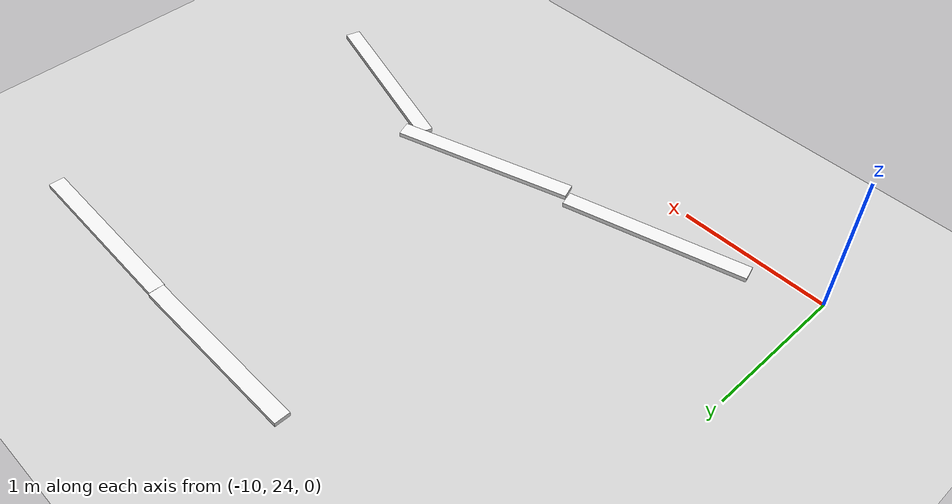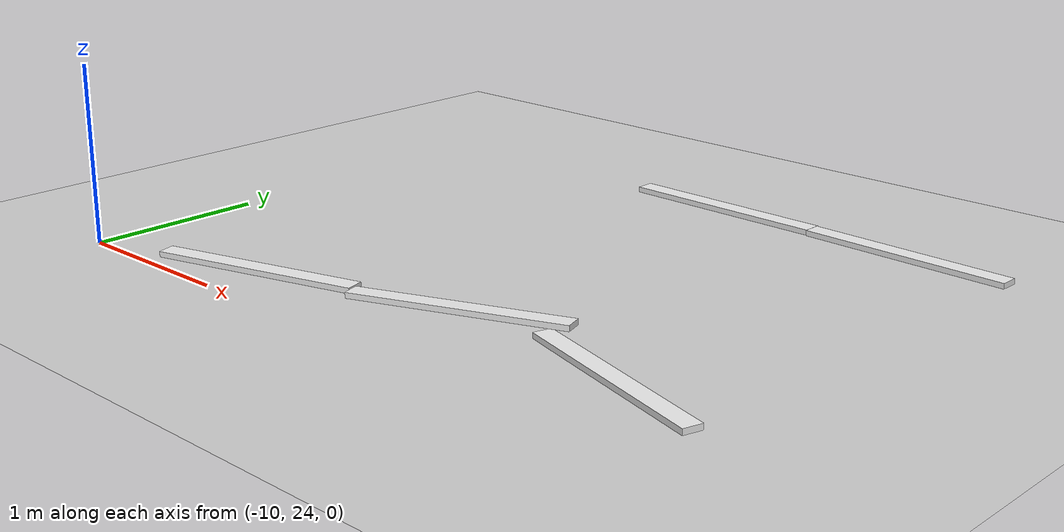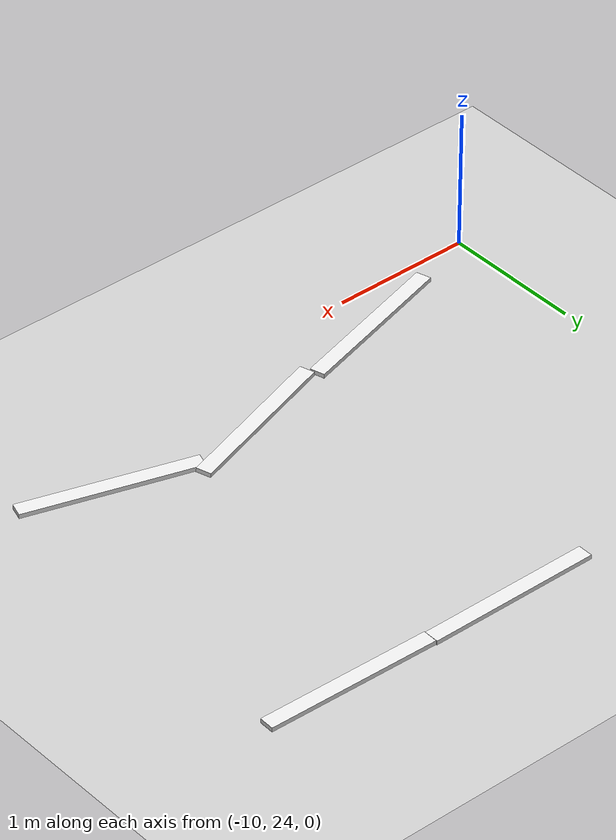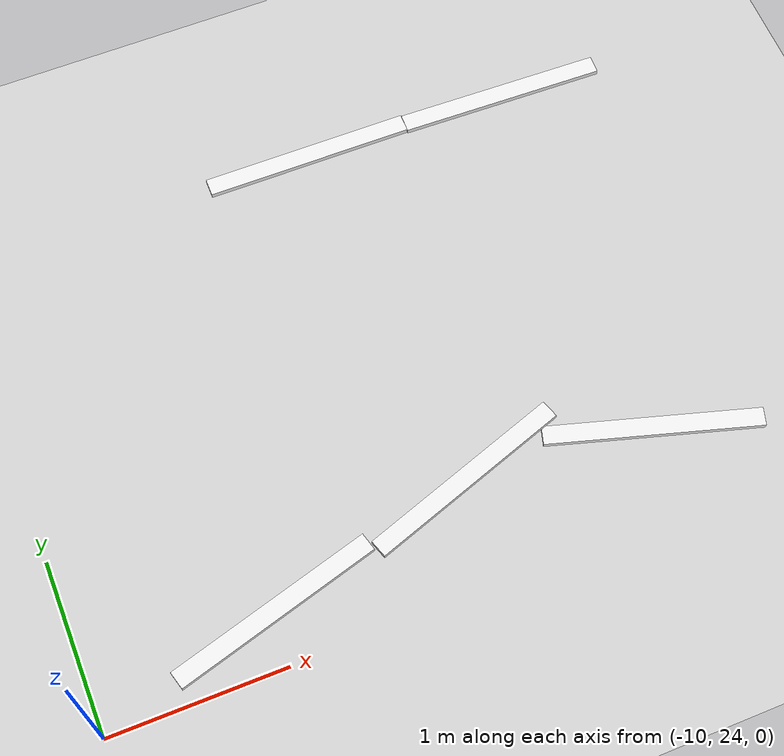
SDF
<sdf version="1.7">
 <world name="default">
  <model name="ground_plane">
   <static>1</static>
   <link name="link">
    <collision name="collision">
     <geometry><plane><normal>0 0 1</normal><size>100 100</size></plane></geometry>
     <surface><friction><ode><mu>100</mu><mu2>50</mu2></ode></friction></surface>
    </collision>
    <visual name="visual">
     <cast_shadows>0</cast_shadows>
     <geometry><plane><normal>0 0 1</normal><size>100 100</size></plane></geometry>
     <material>
      <script><uri>file://media/materials/scripts/gazebo.material</uri><name>Gazebo/Grey</name></script>
     </material>
    </visual>
   </link>
  </model>
  <model name="road_way_clone_clone_clone_0_clone_clone">
   <link name="link">
    <inertial>
     <mass>1</mass>
     <inertia>
      <ixx>0.166667</ixx>
      <ixy>0</ixy>
      <ixz>0</ixz>
      <iyy>0.166667</iyy>
      <iyz>0</iyz>
      <izz>0.166667</izz>
     </inertia>
    </inertial>
    <visual name="visual">
     <geometry><box><size>0.106644 1.22348 0.03129</size></box></geometry>
     <material>
      <script><name>Gazebo/White</name><uri>file://media/materials/scripts/gazebo.material</uri></script>
      <shader type="pixel"><normal_map>__default__</normal_map></shader>
      <ambient>1 1 1 1</ambient>
      <diffuse>1 1 1 1</diffuse>
      <specular>0 0 0 1</specular>
      <emissive>0 0 0 1</emissive>
     </material>
    </visual>
    <collision name="collision">
     <geometry><box><size>0.10644 1.22348 0.03129</size></box></geometry>
     <surface>
      <friction>
       <ode><mu>1</mu><mu2>1</mu2><fdir1>0 0 0</fdir1><slip1>0</slip1><slip2>0</slip2></ode>
       <torsional>
        <coefficient>1</coefficient>
        <patch_radius>0</patch_radius>
        <surface_radius>0</surface_radius>
        <use_patch_radius>1</use_patch_radius>
        <ode><slip>0</slip></ode>
       </torsional>
      </friction>
      <bounce><restitution_coefficient>0</restitution_coefficient><threshold>1e+06</threshold></bounce>
      <contact>
       <collide_without_contact>0</collide_without_contact>
       <collide_without_contact_bitmask>1</collide_without_contact_bitmask>
       <collide_bitmask>1</collide_bitmask>
       <ode>
        <soft_cfm>0</soft_cfm>
        <soft_erp>0.2</soft_erp>
        <kp>1e+13</kp>
        <kd>1</kd>
        <max_vel>0.01</max_vel>
        <min_depth>0</min_depth>
       </ode>
       <bullet>
        <split_impulse>1</split_impulse>
        <split_impulse_penetration_threshold>-0.01</split_impulse_penetration_threshold>
        <soft_cfm>0</soft_cfm>
        <soft_erp>0.2</soft_erp>
        <kp>1e+13</kp>
        <kd>1</kd>
       </bullet>
      </contact>
     </surface>
    </collision>
   </link>
   <static>0</static>
   <pose>-6.70437 24.506 0.013165 -0.005856 0.000514 1.28004</pose>
  </model>
  <model name="road_way_clone_clone_clone_0_clone_clone_clone">
   <link name="link">
    <inertial>
     <mass>1</mass>
     <inertia>
      <ixx>0.166667</ixx>
      <ixy>0</ixy>
      <ixz>0</ixz>
      <iyy>0.166667</iyy>
      <iyz>0</iyz>
      <izz>0.166667</izz>
     </inertia>
    </inertial>
    <visual name="visual">
     <geometry><box><size>0.106644 1.22348 0.03129</size></box></geometry>
     <material>
      <script><name>Gazebo/White</name><uri>file://media/materials/scripts/gazebo.material</uri></script>
      <shader type="pixel"><normal_map>__default__</normal_map></shader>
      <ambient>1 1 1 1</ambient>
      <diffuse>1 1 1 1</diffuse>
      <specular>0 0 0 1</specular>
      <emissive>0 0 0 1</emissive>
     </material>
    </visual>
    <collision name="collision">
     <geometry><box><size>0.10644 1.22348 0.03129</size></box></geometry>
     <surface>
      <friction>
       <ode><mu>1</mu><mu2>1</mu2><fdir1>0 0 0</fdir1><slip1>0</slip1><slip2>0</slip2></ode>
       <torsional>
        <coefficient>1</coefficient>
        <patch_radius>0</patch_radius>
        <surface_radius>0</surface_radius>
        <use_patch_radius>1</use_patch_radius>
        <ode><slip>0</slip></ode>
       </torsional>
      </friction>
      <bounce><restitution_coefficient>0</restitution_coefficient><threshold>1e+06</threshold></bounce>
      <contact>
       <collide_without_contact>0</collide_without_contact>
       <collide_without_contact_bitmask>1</collide_without_contact_bitmask>
       <collide_bitmask>1</collide_bitmask>
       <ode>
        <soft_cfm>0</soft_cfm>
        <soft_erp>0.2</soft_erp>
        <kp>1e+13</kp>
        <kd>1</kd>
        <max_vel>0.01</max_vel>
        <min_depth>0</min_depth>
       </ode>
       <bullet>
        <split_impulse>1</split_impulse>
        <split_impulse_penetration_threshold>-0.01</split_impulse_penetration_threshold>
        <soft_cfm>0</soft_cfm>
        <soft_erp>0.2</soft_erp>
        <kp>1e+13</kp>
        <kd>1</kd>
       </bullet>
      </contact>
     </surface>
    </collision>
   </link>
   <static>0</static>
   <pose>-7.77657 24.6047 0.029351 -0.02078 0.01886 1.89408</pose>
  </model>
  <model name="road_way_clone_clone_clone_0_clone_clone_clone_clone">
   <link name="link">
    <inertial>
     <mass>1</mass>
     <inertia>
      <ixx>0.166667</ixx>
      <ixy>0</ixy>
      <ixz>0</ixz>
      <iyy>0.166667</iyy>
      <iyz>0</iyz>
      <izz>0.166667</izz>
     </inertia>
    </inertial>
    <visual name="visual">
     <geometry><box><size>0.106644 1.22348 0.03129</size></box></geometry>
     <material>
      <script><name>Gazebo/White</name><uri>file://media/materials/scripts/gazebo.material</uri></script>
      <shader type="pixel"><normal_map>__default__</normal_map></shader>
      <ambient>1 1 1 1</ambient>
      <diffuse>1 1 1 1</diffuse>
      <specular>0 0 0 1</specular>
      <emissive>0 0 0 1</emissive>
     </material>
    </visual>
    <collision name="collision">
     <geometry><box><size>0.10644 1.22348 0.03129</size></box></geometry>
     <surface>
      <friction>
       <ode><mu>1</mu><mu2>1</mu2><fdir1>0 0 0</fdir1><slip1>0</slip1><slip2>0</slip2></ode>
       <torsional>
        <coefficient>1</coefficient>
        <patch_radius>0</patch_radius>
        <surface_radius>0</surface_radius>
        <use_patch_radius>1</use_patch_radius>
        <ode><slip>0</slip></ode>
       </torsional>
      </friction>
      <bounce><restitution_coefficient>0</restitution_coefficient><threshold>1e+06</threshold></bounce>
      <contact>
       <collide_without_contact>0</collide_without_contact>
       <collide_without_contact_bitmask>1</collide_without_contact_bitmask>
       <collide_bitmask>1</collide_bitmask>
       <ode>
        <soft_cfm>0</soft_cfm>
        <soft_erp>0.2</soft_erp>
        <kp>1e+13</kp>
        <kd>1</kd>
        <max_vel>0.01</max_vel>
        <min_depth>0</min_depth>
       </ode>
       <bullet>
        <split_impulse>1</split_impulse>
        <split_impulse_penetration_threshold>-0.01</split_impulse_penetration_threshold>
        <soft_cfm>0</soft_cfm>
        <soft_erp>0.2</soft_erp>
        <kp>1e+13</kp>
        <kd>1</kd>
       </bullet>
      </contact>
     </surface>
    </collision>
   </link>
   <static>0</static>
   <pose>-8.97761 24.3035 0.015638 1.1e-05 -0 1.84327</pose>
  </model>
  <model name="road_way_clone_clone_clone_clone_clone_clone_0_clone_0_clone">
   <link name="link">
    <inertial>
     <mass>1</mass>
     <inertia>
      <ixx>0.166667</ixx>
      <ixy>0</ixy>
      <ixz>0</ixz>
      <iyy>0.166667</iyy>
      <iyz>0</iyz>
      <izz>0.166667</izz>
     </inertia>
    </inertial>
    <visual name="visual">
     <geometry><box><size>0.106644 1.22348 0.03129</size></box></geometry>
     <material>
      <script><name>Gazebo/White</name><uri>file://media/materials/scripts/gazebo.material</uri></script>
      <shader type="pixel"><normal_map>__default__</normal_map></shader>
      <ambient>1 1 1 1</ambient>
      <diffuse>1 1 1 1</diffuse>
      <specular>0 0 0 1</specular>
      <emissive>0 0 0 1</emissive>
     </material>
    </visual>
    <collision name="collision">
     <geometry><box><size>0.10644 1.22348 0.03129</size></box></geometry>
     <surface>
      <friction>
       <ode><mu>1</mu><mu2>1</mu2><fdir1>0 0 0</fdir1><slip1>0</slip1><slip2>0</slip2></ode>
       <torsional>
        <coefficient>1</coefficient>
        <patch_radius>0</patch_radius>
        <surface_radius>0</surface_radius>
        <use_patch_radius>1</use_patch_radius>
        <ode><slip>0</slip></ode>
       </torsional>
      </friction>
      <bounce><restitution_coefficient>0</restitution_coefficient><threshold>1e+06</threshold></bounce>
      <contact>
       <collide_without_contact>0</collide_without_contact>
       <collide_without_contact_bitmask>1</collide_without_contact_bitmask>
       <collide_bitmask>1</collide_bitmask>
       <ode>
        <soft_cfm>0</soft_cfm>
        <soft_erp>0.2</soft_erp>
        <kp>1e+13</kp>
        <kd>1</kd>
        <max_vel>0.01</max_vel>
        <min_depth>0</min_depth>
       </ode>
       <bullet>
        <split_impulse>1</split_impulse>
        <split_impulse_penetration_threshold>-0.01</split_impulse_penetration_threshold>
        <soft_cfm>0</soft_cfm>
        <soft_erp>0.2</soft_erp>
        <kp>1e+13</kp>
        <kd>1</kd>
       </bullet>
      </contact>
     </surface>
    </collision>
   </link>
   <static>0</static>
   <pose>-6.62824 26.8083 0.015638 -1.1e-05 -0 1.54352</pose>
  </model>
  <model name="road_way_clone_clone_clone_clone_clone_clone_0_clone_0_clone_0">
   <link name="link">
    <inertial>
     <mass>1</mass>
     <inertia>
      <ixx>0.166667</ixx>
      <ixy>0</ixy>
      <ixz>0</ixz>
      <iyy>0.166667</iyy>
      <iyz>0</iyz>
      <izz>0.166667</izz>
     </inertia>
    </inertial>
    <visual name="visual">
     <geometry><box><size>0.106644 1.22348 0.03129</size></box></geometry>
     <material>
      <script><name>Gazebo/White</name><uri>file://media/materials/scripts/gazebo.material</uri></script>
      <shader type="pixel"><normal_map>__default__</normal_map></shader>
      <ambient>1 1 1 1</ambient>
      <diffuse>1 1 1 1</diffuse>
      <specular>0 0 0 1</specular>
      <emissive>0 0 0 1</emissive>
     </material>
    </visual>
    <collision name="collision">
     <geometry><box><size>0.10644 1.22348 0.03129</size></box></geometry>
     <surface>
      <friction>
       <ode><mu>1</mu><mu2>1</mu2><fdir1>0 0 0</fdir1><slip1>0</slip1><slip2>0</slip2></ode>
       <torsional>
        <coefficient>1</coefficient>
        <patch_radius>0</patch_radius>
        <surface_radius>0</surface_radius>
        <use_patch_radius>1</use_patch_radius>
        <ode><slip>0</slip></ode>
       </torsional>
      </friction>
      <bounce><restitution_coefficient>0</restitution_coefficient><threshold>1e+06</threshold></bounce>
      <contact>
       <collide_without_contact>0</collide_without_contact>
       <collide_without_contact_bitmask>1</collide_without_contact_bitmask>
       <collide_bitmask>1</collide_bitmask>
       <ode>
        <soft_cfm>0</soft_cfm>
        <soft_erp>0.2</soft_erp>
        <kp>1e+13</kp>
        <kd>1</kd>
        <max_vel>0.01</max_vel>
        <min_depth>0</min_depth>
       </ode>
       <bullet>
        <split_impulse>1</split_impulse>
        <split_impulse_penetration_threshold>-0.01</split_impulse_penetration_threshold>
        <soft_cfm>0</soft_cfm>
        <soft_erp>0.2</soft_erp>
        <kp>1e+13</kp>
        <kd>1</kd>
       </bullet>
      </contact>
     </surface>
    </collision>
   </link>
   <static>0</static>
   <pose>-7.85248 26.8346 0.015639 -1.1e-05 -0 1.5657</pose>
  </model>
 </world>
</sdf>
